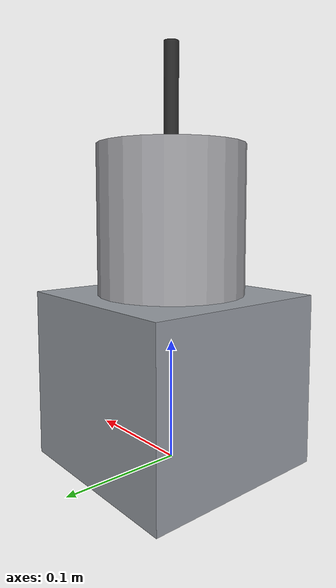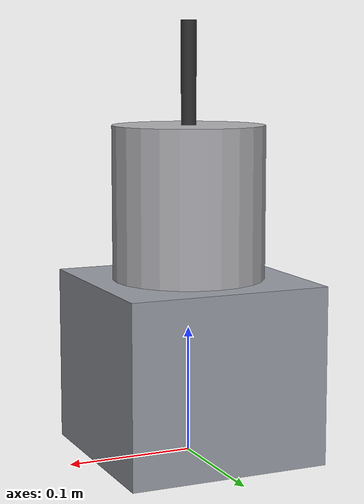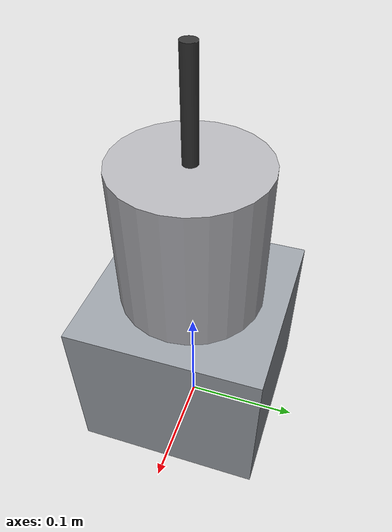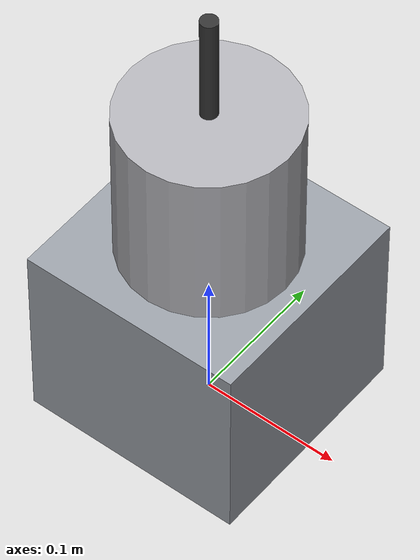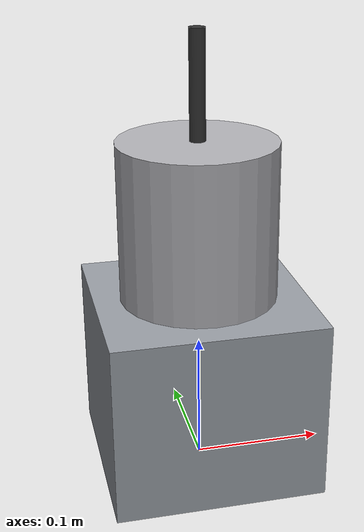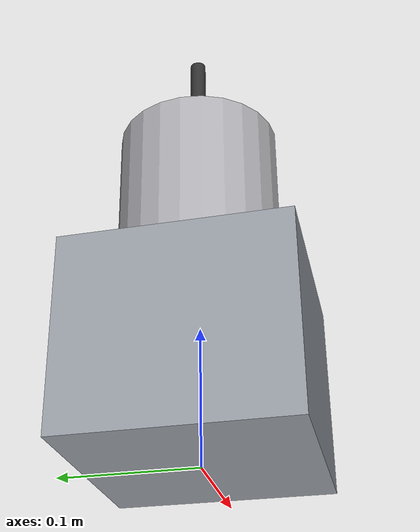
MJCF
<?xml version="1.0" encoding="utf-8"?>
<mujoco model="slurry_mixer">
  <compiler angle="radian" autolimits="true"/>
  <default>
    <default class="body"><geom contype="1" conaffinity="1"/></default>
  </default>
  <worldbody>
    <body name="base">
      <geom type="box" size="0.08 0.08 0.07" pos="0 0 0.07" rgba="0.6 0.62 0.65 1" class="body"/>
      <geom type="box" size="0.024 0.004 0.0175" pos="-0.04 -0.07200000000000001 0.10500000000000001" rgba="0.9 0.7 0.1 1" class="body"/>
      <geom type="cylinder" size="0.06 0.06" pos="0 0 0.20" rgba="0.7 0.7 0.72 0.9" class="body"/>
      <body name="shaft" pos="0 0 0.26">
        <joint name="shaft_joint" type="hinge" axis="0 0 1" range="-3.14159 3.14159" damping="0.3" frictionloss="0.1"/>
  <geom type="cylinder" size="0.006 0.08" pos="0 0 0" rgba="0.2 0.2 0.2 1" class="body"/>
      </body>
    </body>
  </worldbody>
</mujoco>
